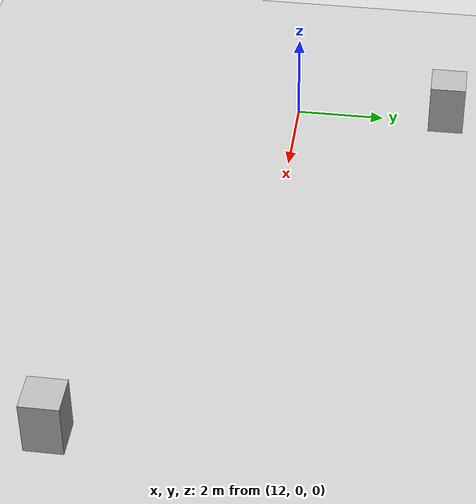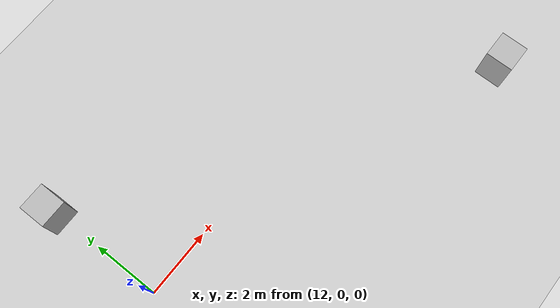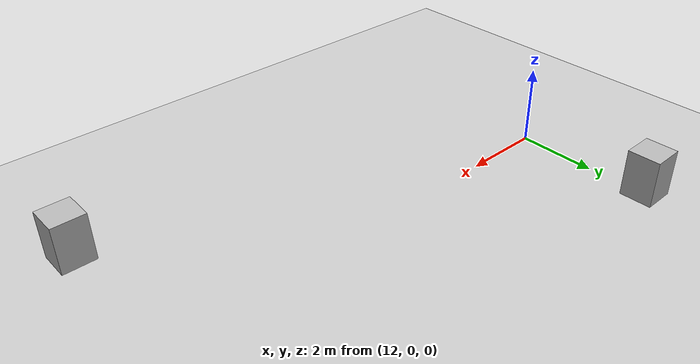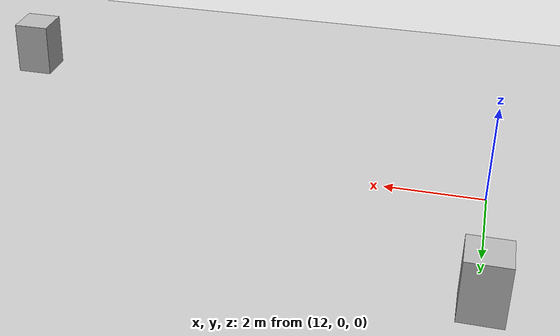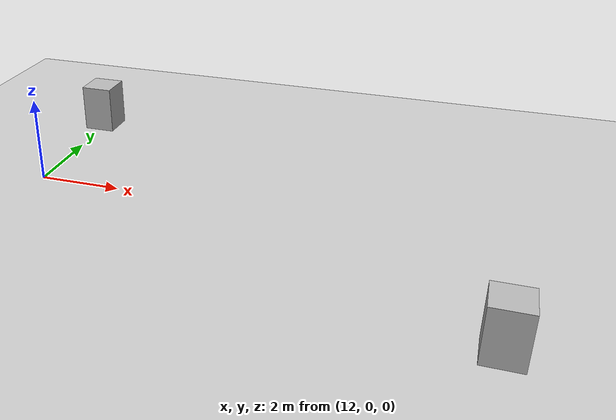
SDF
<?xml version="1.0"?>
<sdf version="1.6">
  <world name="v2-04g-r5-cruise-s5121">
    <gravity>0 0 -9.81</gravity>
    <physics name="v2_deterministic" type="ode">
      <max_step_size>0.002</max_step_size>
      <real_time_update_rate>500</real_time_update_rate>
    </physics>
    <include>
      <uri>model://sun</uri>
    </include>
    <include>
      <uri>model://ground_plane</uri>
    </include>
    <model name="cruise-left">
      <static>true</static>
      <pose>11.953662584 3.481438329 0.600000000 0 0 0.007196307</pose>
      <link name="link">
        <collision name="collision">
          <geometry>
            <box>
              <size>0.800000 0.800000 1.200000</size>
            </box>
          </geometry>
        </collision>
        <visual name="visual">
          <geometry>
            <box>
              <size>0.800000 0.800000 1.200000</size>
            </box>
          </geometry>
        </visual>
      </link>
    </model>
    <model name="cruise-right">
      <static>true</static>
      <pose>22.969258941 -3.520829529 0.600000000 0 0 0.000283127</pose>
      <link name="link">
        <collision name="collision">
          <geometry>
            <box>
              <size>0.800000 0.800000 1.200000</size>
            </box>
          </geometry>
        </collision>
        <visual name="visual">
          <geometry>
            <box>
              <size>0.800000 0.800000 1.200000</size>
            </box>
          </geometry>
        </visual>
      </link>
    </model>
  </world>
</sdf>
